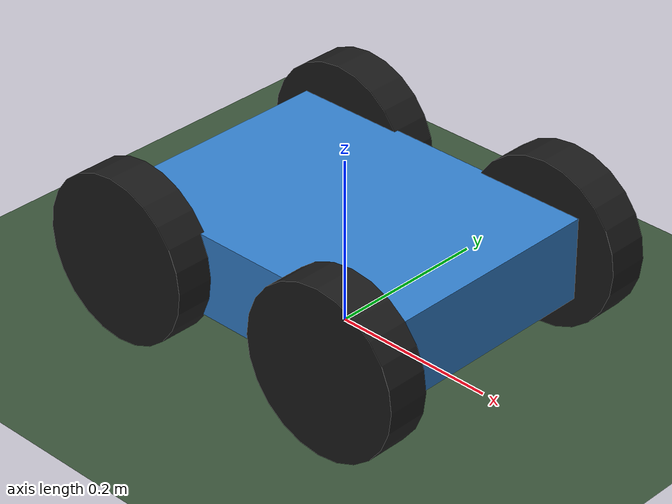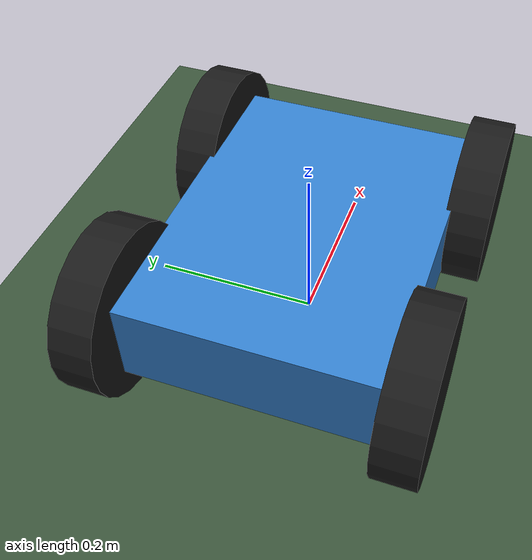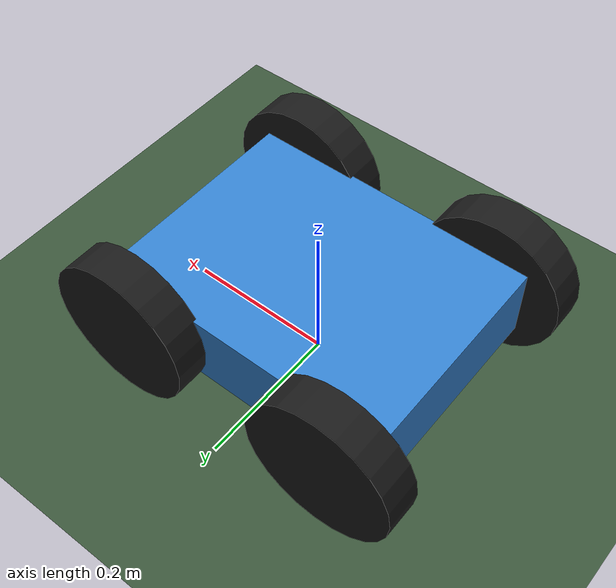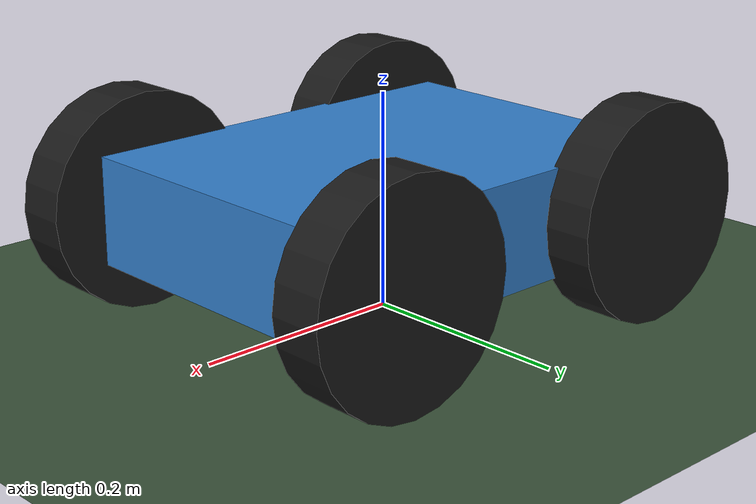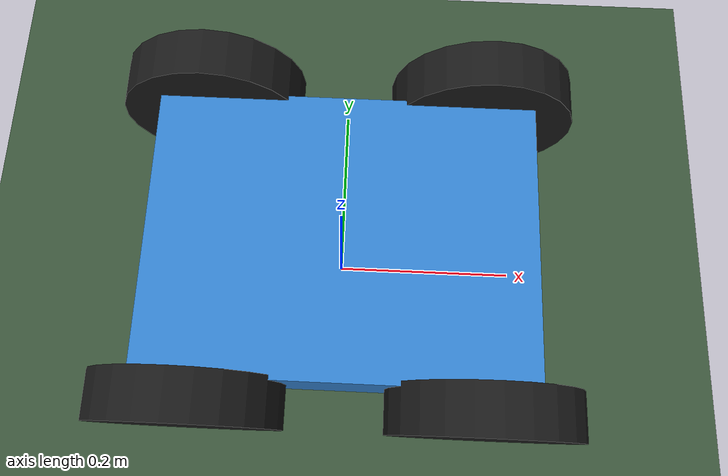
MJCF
<mujoco model="rbx_rover">
  <compiler angle="degree" coordinate="local" inertiafromgeom="true"/>
  <option timestep="0.002" gravity="0 0 -9.81" integrator="implicitfast"/>

  <asset>
    <texture type="skybox" builtin="gradient" rgb1="0.6 0.7 0.9" rgb2="0.1 0.1 0.2" width="128" height="128"/>
    <texture name="grid" type="2d" builtin="checker" rgb1="0.2 0.3 0.2" rgb2="0.25 0.35 0.25" width="256" height="256"/>
    <material name="grid" texture="grid" texrepeat="20 20" reflectance="0.1"/>
  </asset>

  <worldbody>
    <light directional="true" diffuse="0.8 0.8 0.8" pos="0 0 5" dir="0 0 -1"/>
    <geom name="ground" type="plane" size="20 20 0.1" material="grid" friction="1.0 0.005 0.0001"/>

    <!-- Chassis origin height = wheel_radius_m (0.1) so wheel bottoms touch z=0. -->
    <body name="chassis" pos="0 0 0.1">
      <freejoint name="chassis_free"/>
      <geom name="chassis_geom" type="box" size="0.2 0.15 0.05" mass="4.0" rgba="0.2 0.5 0.8 1"/>
      <camera name="robot_camera" pos="0.2 0 0.05" xyaxes="0 -1 0 0 0 1" fovy="60"/>

      <body name="wheel1" pos="0.15 0.17 0">
        <joint name="wheel1" type="hinge" axis="0 1 0" damping="0.05"/>
        <geom name="wheel1_geom" type="cylinder" size="0.1 0.025" euler="90 0 0"
              mass="0.5" rgba="0.1 0.1 0.1 1" friction="1.2 0.005 0.0001"/>
      </body>
      <body name="wheel2" pos="0.15 -0.17 0">
        <joint name="wheel2" type="hinge" axis="0 1 0" damping="0.05"/>
        <geom name="wheel2_geom" type="cylinder" size="0.1 0.025" euler="90 0 0"
              mass="0.5" rgba="0.1 0.1 0.1 1" friction="1.2 0.005 0.0001"/>
      </body>
      <body name="wheel3" pos="-0.15 0.17 0">
        <joint name="wheel3" type="hinge" axis="0 1 0" damping="0.05"/>
        <geom name="wheel3_geom" type="cylinder" size="0.1 0.025" euler="90 0 0"
              mass="0.5" rgba="0.1 0.1 0.1 1" friction="1.2 0.005 0.0001"/>
      </body>
      <body name="wheel4" pos="-0.15 -0.17 0">
        <joint name="wheel4" type="hinge" axis="0 1 0" damping="0.05"/>
        <geom name="wheel4_geom" type="cylinder" size="0.1 0.025" euler="90 0 0"
              mass="0.5" rgba="0.1 0.1 0.1 1" friction="1.2 0.005 0.0001"/>
      </body>
    </body>
  </worldbody>

  <actuator>
    <velocity name="wheel1_vel" joint="wheel1" kv="8" ctrlrange="-15 15"/>
    <velocity name="wheel2_vel" joint="wheel2" kv="8" ctrlrange="-15 15"/>
    <velocity name="wheel3_vel" joint="wheel3" kv="8" ctrlrange="-15 15"/>
    <velocity name="wheel4_vel" joint="wheel4" kv="8" ctrlrange="-15 15"/>
  </actuator>
</mujoco>
